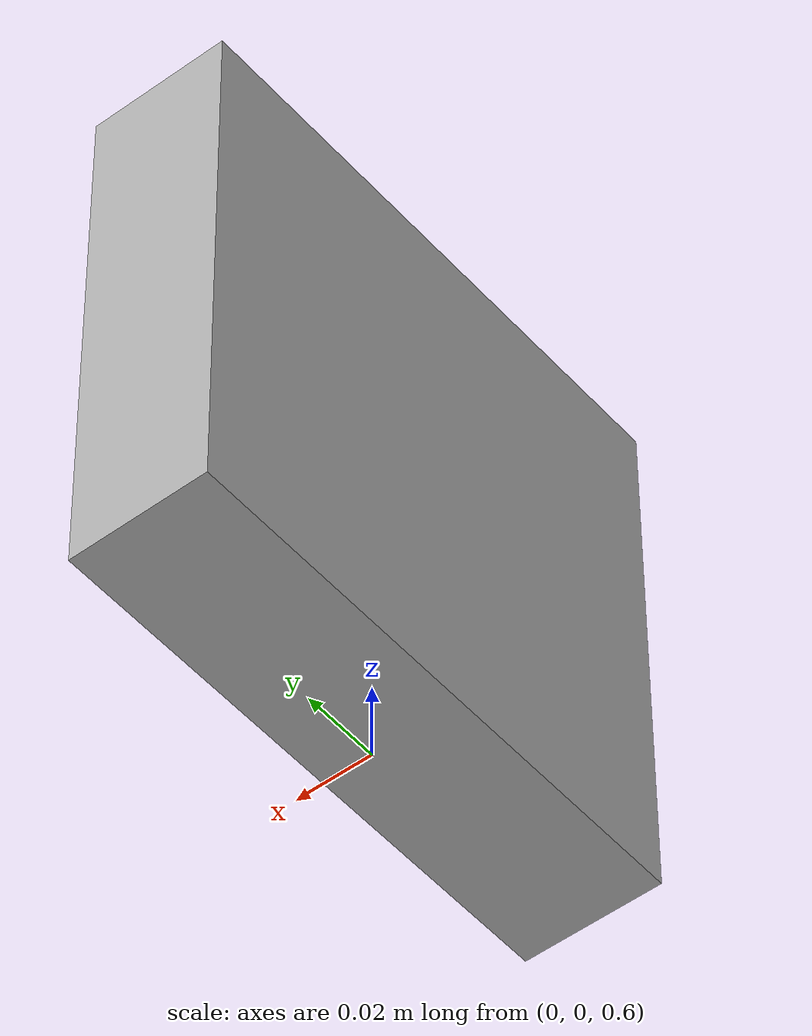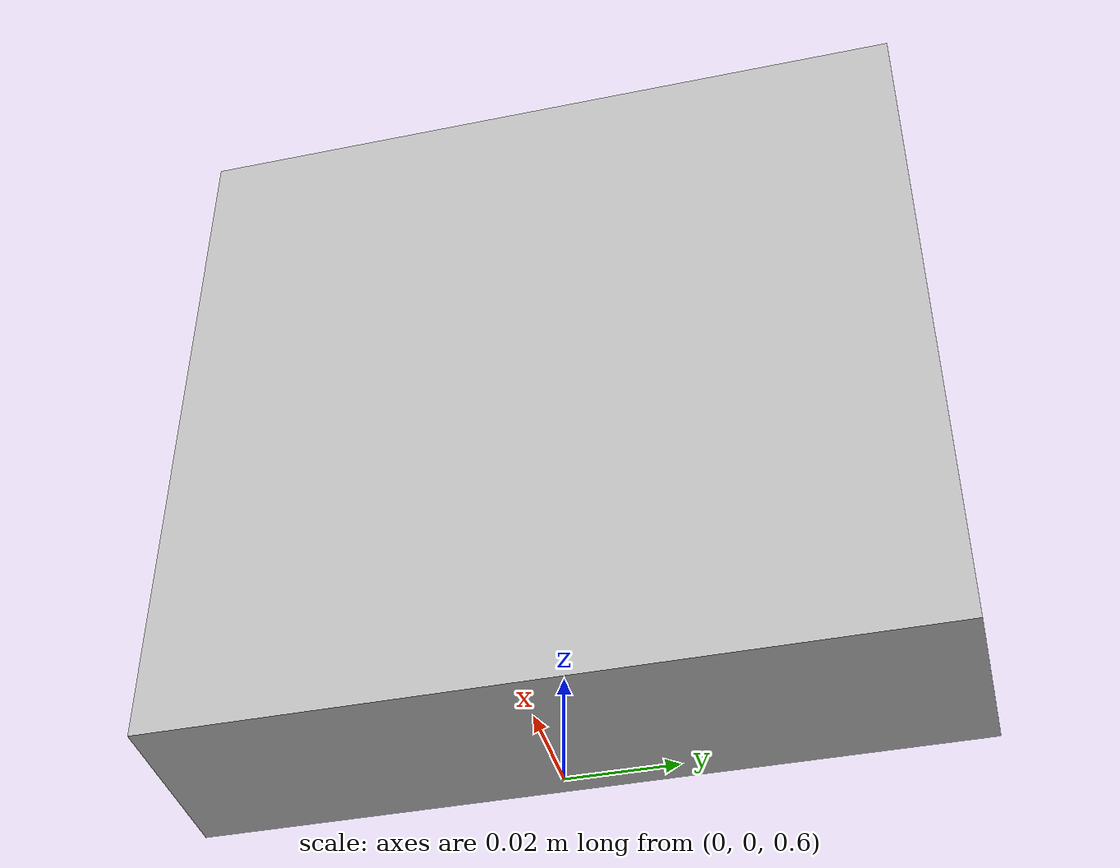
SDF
<sdf version="1.3">
<model name="corny">
  <pose>0 0 0.68 0.0 -1.57 0.0</pose>
  <static>false</static>
    <link name="link">
      <inertial>
        <mass>1.0</mass>
        <inertia>
          <ixx>1.0</ixx>
          <ixy>0.0</ixy>
          <ixz>0.0</ixz>
          <iyy>1.0</iyy>
          <iyz>0.0</iyz>
          <izz>1.0</izz>
        </inertia>
      </inertial>
      <collision name="collision">
        <geometry>
          <box>
            <size>0.143 0.145 0.036</size>
          </box>
        </geometry>
      </collision>
      <visual name="visual">
        <geometry>
          <box>
            <size>0.143 0.145 0.036</size>
          </box>
        </geometry>
	<material>
          <script>
            <uri>model://corny/materials/scripts</uri>
            <uri>model://corny/materials/textures</uri>
            <name>Corny/Diffuse</name>
          </script>
        </material>

      </visual>
    </link>
  </model>
</sdf>
